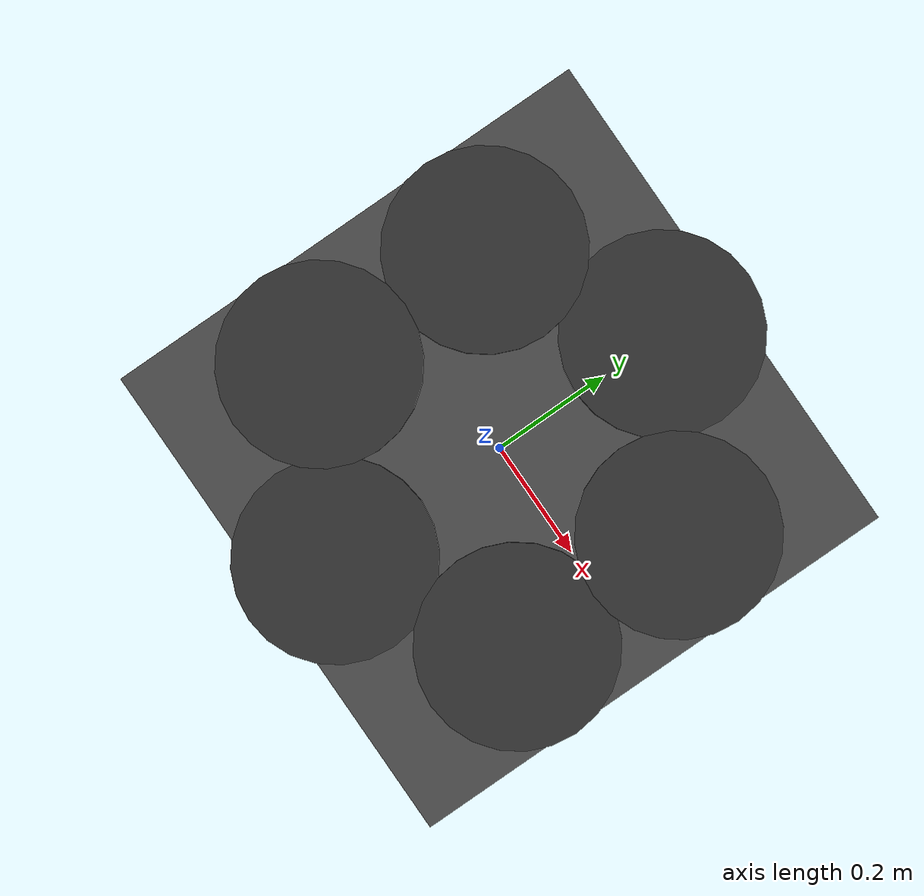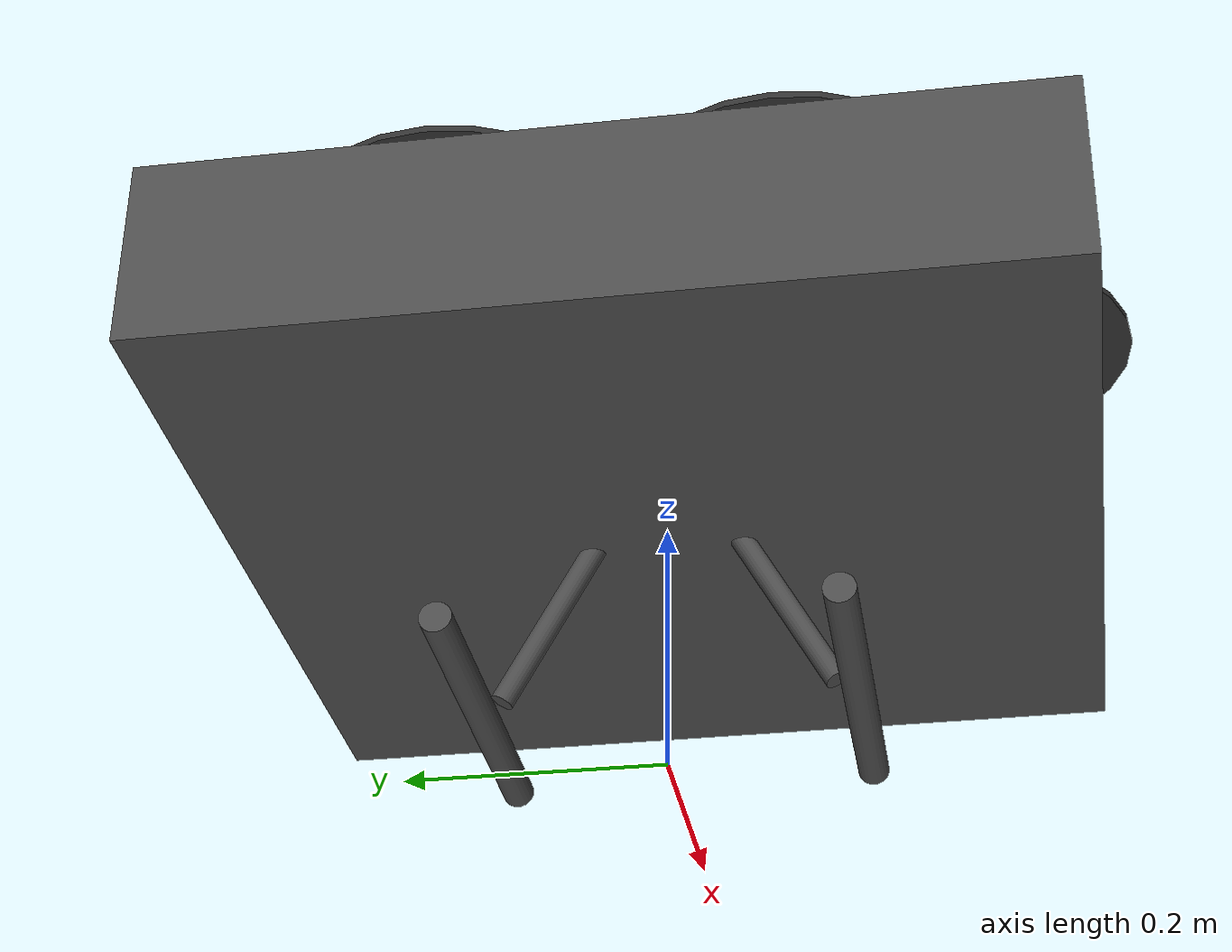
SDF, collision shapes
<?xml version="1.0" encoding="UTF-8"?>
<sdf version='1.9'>
  <model name='typhoon_h480'>
    <pose>0 0 0.26 0 0 0</pose>
    <self_collide>false</self_collide>
    <static>false</static>

    <link name='base_link'>
      <pose>0 0 0 0 0 0</pose>
      <inertial>
        <pose>0.001005 0 -0.0090035 0 0 0</pose>
        <mass>2.02</mass>
        <inertia>
          <ixx>0.011</ixx>
          <ixy>0</ixy>
          <ixz>0</ixz>
          <iyy>0.015</iyy>
          <iyz>0</iyz>
          <izz>0.021</izz>
        </inertia>
      </inertial>

      <collision name='base_link_collision'>
        <pose>0 0 0 0 0 0</pose>
        <geometry>
          <box><size>0.67 0.67 0.15</size></box>
        </geometry>
        <surface>
          <contact><ode><min_depth>0.001</min_depth><max_vel>0</max_vel></ode></contact>
          <friction><ode/></friction>
        </surface>
      </collision>

      <visual name='base_link_visual'>
        <pose>0 0 0 0 0 3.141592</pose>
        <geometry>
          <mesh>
            <scale>0.001 0.001 0.001</scale>
            <uri>model://typhoon_h480/meshes/main_body_remeshed_v3.stl</uri>
          </mesh>
        </geometry>
        <material>
          <ambient>0.3 0.3 0.3 1</ambient>
          <diffuse>0.3 0.3 0.3 1</diffuse>
        </material>
      </visual>

      <!-- Sensors (from x500_base) -->
      <sensor name="air_pressure_sensor" type="air_pressure">
        <always_on>1</always_on>
        <update_rate>50</update_rate>
        <air_pressure>
          <pressure>
            <noise type="gaussian"><mean>0</mean><stddev>3</stddev></noise>
          </pressure>
        </air_pressure>
      </sensor>

      <sensor name="magnetometer_sensor" type="magnetometer">
        <always_on>1</always_on>
        <update_rate>100</update_rate>
        <magnetometer>
          <x><noise type="gaussian"><stddev>0.0001</stddev></noise></x>
          <y><noise type="gaussian"><stddev>0.0001</stddev></noise></y>
          <z><noise type="gaussian"><stddev>0.0001</stddev></noise></z>
        </magnetometer>
      </sensor>

      <sensor name="imu_sensor" type="imu">
        <always_on>1</always_on>
        <update_rate>250</update_rate>
        <imu>
          <angular_velocity>
            <x><noise type="gaussian"><mean>0.0</mean><stddev>0.0008726646</stddev></noise></x>
            <y><noise type="gaussian"><mean>0.0</mean><stddev>0.0008726646</stddev></noise></y>
            <z><noise type="gaussian"><mean>0.0</mean><stddev>0.0008726646</stddev></noise></z>
          </angular_velocity>
          <linear_acceleration>
            <x><noise type="gaussian"><mean>0.0</mean><stddev>0.00637</stddev></noise></x>
            <y><noise type="gaussian"><mean>0.0</mean><stddev>0.00637</stddev></noise></y>
            <z><noise type="gaussian"><mean>0.0</mean><stddev>0.00686</stddev></noise></z>
          </linear_acceleration>
        </imu>
      </sensor>

      <sensor name="navsat_sensor" type="navsat">
        <always_on>1</always_on>
        <update_rate>30</update_rate>
      </sensor>
    </link>

    <!-- Landing gear: left leg -->
    <link name="left_leg">
      <inertial>
        <pose>0 -0.14314 -0.207252 0 0 0</pose>
        <mass>0.1</mass>
        <inertia>
          <ixx>0.001</ixx><ixy>0</ixy><ixz>0</ixz>
          <iyy>0.001</iyy><iyz>0</iyz><izz>0.001</izz>
        </inertia>
      </inertial>
      <collision name='collision'>
        <pose>-0.005 -0.14314 -0.207252 0 1.56893 0</pose>
        <geometry><cylinder><radius>0.012209</radius><length>0.3</length></cylinder></geometry>
        <surface>
          <contact><ode><kp>1e+8</kp><kd>1</kd><max_vel>0.01</max_vel><min_depth>0.001</min_depth></ode></contact>
          <friction><ode><mu>1</mu><mu2>1</mu2></ode></friction>
        </surface>
      </collision>
      <collision name='collision_bar'>
        <pose>0.00052 -0.08503 -0.121187 -0.501318 0 0</pose>
        <geometry><cylinder><radius>0.00914984</radius><length>0.176893</length></cylinder></geometry>
        <surface>
          <contact><ode><kp>1e+8</kp><kd>1</kd><max_vel>0.01</max_vel><min_depth>0.001</min_depth></ode></contact>
          <friction><ode><mu>1</mu><mu2>1</mu2></ode></friction>
        </surface>
      </collision>
      <visual name='left_leg_visual'>
        <geometry>
          <mesh>
            <scale>0.001 0.001 0.001</scale>
            <uri>model://typhoon_h480/meshes/leg2_remeshed_v3.stl</uri>
          </mesh>
        </geometry>
        <material>
          <ambient>0.3 0.3 0.3 1</ambient>
          <diffuse>0.3 0.3 0.3 1</diffuse>
        </material>
      </visual>
    </link>
    <joint name='left_leg_joint' type='revolute'>
      <parent>base_link</parent>
      <child>left_leg</child>
      <pose>0.00026 -0.040515 -0.048 0 0 0</pose>
      <axis>
        <xyz>-1 0 0</xyz>
        <limit><lower>0</lower><upper>0</upper></limit>
      </axis>
    </joint>

    <!-- Landing gear: right leg -->
    <link name="right_leg">
      <inertial>
        <pose>0 0.14314 -0.207252 0 0 0</pose>
        <mass>0.1</mass>
        <inertia>
          <ixx>0.001</ixx><ixy>0</ixy><ixz>0</ixz>
          <iyy>0.001</iyy><iyz>0</iyz><izz>0.001</izz>
        </inertia>
      </inertial>
      <collision name='collision'>
        <pose>-0.005 0.14314 -0.207252 0 1.56893 0</pose>
        <geometry><cylinder><radius>0.012209</radius><length>0.3</length></cylinder></geometry>
        <surface>
          <contact><ode><kp>1e+8</kp><kd>1</kd><max_vel>0.01</max_vel><min_depth>0.001</min_depth></ode></contact>
          <friction><ode><mu>1</mu><mu2>1</mu2></ode></friction>
        </surface>
      </collision>
      <collision name='collision_bar'>
        <pose>0.00052 0.08503 -0.121187 0.501318 0 0</pose>
        <geometry><cylinder><radius>0.00914984</radius><length>0.176893</length></cylinder></geometry>
        <surface>
          <contact><ode><kp>1e+8</kp><kd>1</kd><max_vel>0.01</max_vel><min_depth>0.001</min_depth></ode></contact>
          <friction><ode><mu>1</mu><mu2>1</mu2></ode></friction>
        </surface>
      </collision>
      <visual name='right_leg_visual'>
        <geometry>
          <mesh>
            <scale>0.001 0.001 0.001</scale>
            <uri>model://typhoon_h480/meshes/leg1_remeshed_v3.stl</uri>
          </mesh>
        </geometry>
        <material>
          <ambient>0.3 0.3 0.3 1</ambient>
          <diffuse>0.3 0.3 0.3 1</diffuse>
        </material>
      </visual>
    </link>
    <joint name='right_leg_joint' type='revolute'>
      <parent>base_link</parent>
      <child>right_leg</child>
      <pose>0.00026 0.040515 -0.048 0 0 0</pose>
      <axis>
        <xyz>1 0 0</xyz>
        <limit><lower>0</lower><upper>0</upper></limit>
      </axis>
    </joint>

    <!-- Gimbal mount (static) -->
    <link name="cgo3_mount_link">
      <inertial>
        <pose>-0.041 0 -0.162 0 0 0</pose>
        <mass>0.1</mass>
        <inertia>
          <ixx>0.001</ixx><ixy>0</ixy><ixz>0</ixz>
          <iyy>0.001</iyy><iyz>0</iyz><izz>0.001</izz>
        </inertia>
      </inertial>
      <visual name='cgo3_mount_visual'>
        <geometry>
          <mesh>
            <scale>0.001 0.001 0.001</scale>
            <uri>model://typhoon_h480/meshes/cgo3_mount_remeshed_v1.stl</uri>
          </mesh>
        </geometry>
        <material>
          <ambient>0.3 0.3 0.3 1</ambient>
          <diffuse>0.3 0.3 0.3 1</diffuse>
        </material>
      </visual>
    </link>
    <joint name='cgo3_mount_joint' type='fixed'>
      <parent>base_link</parent>
      <child>cgo3_mount_link</child>
    </joint>

    <!-- Rotor 0: front-right, CCW -->
    <link name='rotor_0'>
      <pose>-0.00187896 -0.242705 0.0822169 0 0 -2.09439510239</pose>
      <inertial>
        <mass>0.019</mass>
        <inertia>
          <ixx>5.22e-07</ixx><iyy>3.53e-05</iyy><izz>3.58e-05</izz>
          <ixy>0</ixy><ixz>0</ixz><iyz>0</iyz>
        </inertia>
      </inertial>
      <collision name='rotor_0_collision'>
        <geometry><cylinder><radius>0.128</radius><length>0.005</length></cylinder></geometry>
      </collision>
      <visual name='rotor_0_visual'>
        <pose>-0.211396 -0.119762 -0.082219 0 0 0</pose>
        <geometry>
          <mesh>
            <scale>0.001 0.001 0.001</scale>
            <uri>model://typhoon_h480/meshes/prop_ccw_assembly_remeshed_v3.stl</uri>
          </mesh>
        </geometry>
        <material>
          <ambient>0.2 0.2 0.2 1</ambient>
          <diffuse>0.2 0.2 0.2 1</diffuse>
        </material>
      </visual>
    </link>
    <joint name='rotor_0_joint' type='revolute'>
      <parent>base_link</parent>
      <child>rotor_0</child>
      <axis>
        <xyz>0 0 1</xyz>
        <limit><lower>-1e+16</lower><upper>1e+16</upper></limit>
      </axis>
    </joint>

    <!-- Rotor 1: front-left, CW -->
    <link name='rotor_1'>
      <pose>-0.00187896 0.242705 0.0822169 0 0 0</pose>
      <inertial>
        <mass>0.019</mass>
        <inertia>
          <ixx>5.22e-07</ixx><iyy>3.53e-05</iyy><izz>3.58e-05</izz>
          <ixy>0</ixy><ixz>0</ixz><iyz>0</iyz>
        </inertia>
      </inertial>
      <collision name='rotor_1_collision'>
        <geometry><cylinder><radius>0.128</radius><length>0.005</length></cylinder></geometry>
      </collision>
      <visual name='rotor_1_visual'>
        <pose>0.00187896 -0.242705 -0.0822169 0 0 0</pose>
        <geometry>
          <mesh>
            <scale>0.001 0.001 0.001</scale>
            <uri>model://typhoon_h480/meshes/prop_cw_assembly_remeshed_v3.stl</uri>
          </mesh>
        </geometry>
        <material>
          <ambient>0.2 0.2 0.2 1</ambient>
          <diffuse>0.2 0.2 0.2 1</diffuse>
        </material>
      </visual>
    </link>
    <joint name='rotor_1_joint' type='revolute'>
      <parent>base_link</parent>
      <child>rotor_1</child>
      <axis>
        <xyz>0 0 1</xyz>
        <limit><lower>-1e+16</lower><upper>1e+16</upper></limit>
      </axis>
    </joint>

    <!-- Rotor 2: right, CW -->
    <link name='rotor_2'>
      <pose>0.211396 0.119762 0.082219 0 0 0</pose>
      <inertial>
        <mass>0.019</mass>
        <inertia>
          <ixx>5.22e-07</ixx><iyy>3.53e-05</iyy><izz>3.58e-05</izz>
          <ixy>0</ixy><ixz>0</ixz><iyz>0</iyz>
        </inertia>
      </inertial>
      <collision name='rotor_2_collision'>
        <geometry><cylinder><radius>0.128</radius><length>0.005</length></cylinder></geometry>
      </collision>
      <visual name='rotor_2_visual'>
        <pose>-0.211396 -0.119762 -0.082219 0 0 0</pose>
        <geometry>
          <mesh>
            <scale>0.001 0.001 0.001</scale>
            <uri>model://typhoon_h480/meshes/prop_ccw_assembly_remeshed_v3.stl</uri>
          </mesh>
        </geometry>
        <material>
          <ambient>0.2 0.2 0.2 1</ambient>
          <diffuse>0.2 0.2 0.2 1</diffuse>
        </material>
      </visual>
    </link>
    <joint name='rotor_2_joint' type='revolute'>
      <parent>base_link</parent>
      <child>rotor_2</child>
      <axis>
        <xyz>0 0 1</xyz>
        <limit><lower>-1e+16</lower><upper>1e+16</upper></limit>
      </axis>
    </joint>

    <!-- Rotor 3: left, CCW -->
    <link name='rotor_3'>
      <pose>-0.209396 -0.122762 0.082219 0 0 2.09439510239</pose>
      <inertial>
        <mass>0.019</mass>
        <inertia>
          <ixx>5.22e-07</ixx><iyy>3.53e-05</iyy><izz>3.58e-05</izz>
          <ixy>0</ixy><ixz>0</ixz><iyz>0</iyz>
        </inertia>
      </inertial>
      <collision name='rotor_3_collision'>
        <geometry><cylinder><radius>0.128</radius><length>0.005</length></cylinder></geometry>
      </collision>
      <visual name='rotor_3_visual'>
        <pose>0.00187896 -0.242705 -0.0822169 0 0 0</pose>
        <geometry>
          <mesh>
            <scale>0.001 0.001 0.001</scale>
            <uri>model://typhoon_h480/meshes/prop_cw_assembly_remeshed_v3.stl</uri>
          </mesh>
        </geometry>
        <material>
          <ambient>0.2 0.2 0.2 1</ambient>
          <diffuse>0.2 0.2 0.2 1</diffuse>
        </material>
      </visual>
    </link>
    <joint name='rotor_3_joint' type='revolute'>
      <parent>base_link</parent>
      <child>rotor_3</child>
      <axis>
        <xyz>0 0 1</xyz>
        <limit><lower>-1e+16</lower><upper>1e+16</upper></limit>
      </axis>
    </joint>

    <!-- Rotor 4: rear-right, CCW -->
    <link name='rotor_4'>
      <pose>0.211396 -0.119762 0.082219 0 0 -2.09439510239</pose>
      <inertial>
        <mass>0.019</mass>
        <inertia>
          <ixx>5.22e-07</ixx><iyy>3.53e-05</iyy><izz>3.58e-05</izz>
          <ixy>0</ixy><ixz>0</ixz><iyz>0</iyz>
        </inertia>
      </inertial>
      <collision name='rotor_4_collision'>
        <geometry><cylinder><radius>0.128</radius><length>0.005</length></cylinder></geometry>
      </collision>
      <visual name='rotor_4_visual'>
        <pose>0.00187896 -0.242705 -0.0822169 0 0 0</pose>
        <geometry>
          <mesh>
            <scale>0.001 0.001 0.001</scale>
            <uri>model://typhoon_h480/meshes/prop_cw_assembly_remeshed_v3.stl</uri>
          </mesh>
        </geometry>
        <material>
          <ambient>0.2 0.2 0.2 1</ambient>
          <diffuse>0.2 0.2 0.2 1</diffuse>
        </material>
      </visual>
    </link>
    <joint name='rotor_4_joint' type='revolute'>
      <parent>base_link</parent>
      <child>rotor_4</child>
      <axis>
        <xyz>0 0 1</xyz>
        <limit><lower>-1e+16</lower><upper>1e+16</upper></limit>
      </axis>
    </joint>

    <!-- Rotor 5: rear-left, CW -->
    <link name='rotor_5'>
      <pose>-0.209396 0.122762 0.082219 0 0 2.09439510239</pose>
      <inertial>
        <mass>0.019</mass>
        <inertia>
          <ixx>5.22e-07</ixx><iyy>3.53e-05</iyy><izz>3.58e-05</izz>
          <ixy>0</ixy><ixz>0</ixz><iyz>0</iyz>
        </inertia>
      </inertial>
      <collision name='rotor_5_collision'>
        <geometry><cylinder><radius>0.128</radius><length>0.005</length></cylinder></geometry>
      </collision>
      <visual name='rotor_5_visual'>
        <pose>-0.211396 -0.119762 -0.082219 0 0 0</pose>
        <geometry>
          <mesh>
            <scale>0.001 0.001 0.001</scale>
            <uri>model://typhoon_h480/meshes/prop_ccw_assembly_remeshed_v3.stl</uri>
          </mesh>
        </geometry>
        <material>
          <ambient>0.2 0.2 0.2 1</ambient>
          <diffuse>0.2 0.2 0.2 1</diffuse>
        </material>
      </visual>
    </link>
    <joint name='rotor_5_joint' type='revolute'>
      <parent>base_link</parent>
      <child>rotor_5</child>
      <axis>
        <xyz>0 0 1</xyz>
        <limit><lower>-1e+16</lower><upper>1e+16</upper></limit>
      </axis>
    </joint>

    <!-- Motor plugins (Gazebo Harmonic) -->
    <plugin filename="gz-sim-multicopter-motor-model-system" name="gz::sim::systems::MulticopterMotorModel">
      <jointName>rotor_0_joint</jointName>
      <linkName>rotor_0</linkName>
      <turningDirection>cw</turningDirection>
      <timeConstantUp>0.0125</timeConstantUp>
      <timeConstantDown>0.025</timeConstantDown>
      <maxRotVelocity>1500</maxRotVelocity>
      <motorConstant>8.54858e-06</motorConstant>
      <momentConstant>0.06</momentConstant>
      <commandSubTopic>command/motor_speed</commandSubTopic>
      <motorNumber>0</motorNumber>
      <rotorDragCoefficient>0.000806428</rotorDragCoefficient>
      <rollingMomentCoefficient>1e-06</rollingMomentCoefficient>
      <rotorVelocitySlowdownSim>10</rotorVelocitySlowdownSim>
      <motorType>velocity</motorType>
    </plugin>
    <plugin filename="gz-sim-multicopter-motor-model-system" name="gz::sim::systems::MulticopterMotorModel">
      <jointName>rotor_1_joint</jointName>
      <linkName>rotor_1</linkName>
      <turningDirection>ccw</turningDirection>
      <timeConstantUp>0.0125</timeConstantUp>
      <timeConstantDown>0.025</timeConstantDown>
      <maxRotVelocity>1500</maxRotVelocity>
      <motorConstant>8.54858e-06</motorConstant>
      <momentConstant>0.06</momentConstant>
      <commandSubTopic>command/motor_speed</commandSubTopic>
      <motorNumber>1</motorNumber>
      <rotorDragCoefficient>0.000806428</rotorDragCoefficient>
      <rollingMomentCoefficient>1e-06</rollingMomentCoefficient>
      <rotorVelocitySlowdownSim>10</rotorVelocitySlowdownSim>
      <motorType>velocity</motorType>
    </plugin>
    <plugin filename="gz-sim-multicopter-motor-model-system" name="gz::sim::systems::MulticopterMotorModel">
      <jointName>rotor_2_joint</jointName>
      <linkName>rotor_2</linkName>
      <turningDirection>cw</turningDirection>
      <timeConstantUp>0.0125</timeConstantUp>
      <timeConstantDown>0.025</timeConstantDown>
      <maxRotVelocity>1500</maxRotVelocity>
      <motorConstant>8.54858e-06</motorConstant>
      <momentConstant>0.06</momentConstant>
      <commandSubTopic>command/motor_speed</commandSubTopic>
      <motorNumber>2</motorNumber>
      <rotorDragCoefficient>0.000806428</rotorDragCoefficient>
      <rollingMomentCoefficient>1e-06</rollingMomentCoefficient>
      <rotorVelocitySlowdownSim>10</rotorVelocitySlowdownSim>
      <motorType>velocity</motorType>
    </plugin>
    <plugin filename="gz-sim-multicopter-motor-model-system" name="gz::sim::systems::MulticopterMotorModel">
      <jointName>rotor_3_joint</jointName>
      <linkName>rotor_3</linkName>
      <turningDirection>ccw</turningDirection>
      <timeConstantUp>0.0125</timeConstantUp>
      <timeConstantDown>0.025</timeConstantDown>
      <maxRotVelocity>1500</maxRotVelocity>
      <motorConstant>8.54858e-06</motorConstant>
      <momentConstant>0.06</momentConstant>
      <commandSubTopic>command/motor_speed</commandSubTopic>
      <motorNumber>3</motorNumber>
      <rotorDragCoefficient>0.000806428</rotorDragCoefficient>
      <rollingMomentCoefficient>1e-06</rollingMomentCoefficient>
      <rotorVelocitySlowdownSim>10</rotorVelocitySlowdownSim>
      <motorType>velocity</motorType>
    </plugin>
    <plugin filename="gz-sim-multicopter-motor-model-system" name="gz::sim::systems::MulticopterMotorModel">
      <jointName>rotor_4_joint</jointName>
      <linkName>rotor_4</linkName>
      <turningDirection>ccw</turningDirection>
      <timeConstantUp>0.0125</timeConstantUp>
      <timeConstantDown>0.025</timeConstantDown>
      <maxRotVelocity>1500</maxRotVelocity>
      <motorConstant>8.54858e-06</motorConstant>
      <momentConstant>0.06</momentConstant>
      <commandSubTopic>command/motor_speed</commandSubTopic>
      <motorNumber>4</motorNumber>
      <rotorDragCoefficient>0.000806428</rotorDragCoefficient>
      <rollingMomentCoefficient>1e-06</rollingMomentCoefficient>
      <rotorVelocitySlowdownSim>10</rotorVelocitySlowdownSim>
      <motorType>velocity</motorType>
    </plugin>
    <plugin filename="gz-sim-multicopter-motor-model-system" name="gz::sim::systems::MulticopterMotorModel">
      <jointName>rotor_5_joint</jointName>
      <linkName>rotor_5</linkName>
      <turningDirection>cw</turningDirection>
      <timeConstantUp>0.0125</timeConstantUp>
      <timeConstantDown>0.025</timeConstantDown>
      <maxRotVelocity>1500</maxRotVelocity>
      <motorConstant>8.54858e-06</motorConstant>
      <momentConstant>0.06</momentConstant>
      <commandSubTopic>command/motor_speed</commandSubTopic>
      <motorNumber>5</motorNumber>
      <rotorDragCoefficient>0.000806428</rotorDragCoefficient>
      <rollingMomentCoefficient>1e-06</rollingMomentCoefficient>
      <rotorVelocitySlowdownSim>10</rotorVelocitySlowdownSim>
      <motorType>velocity</motorType>
    </plugin>

  </model>
</sdf>
